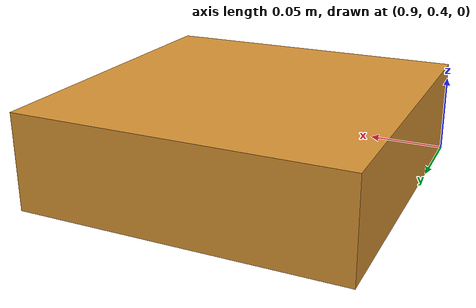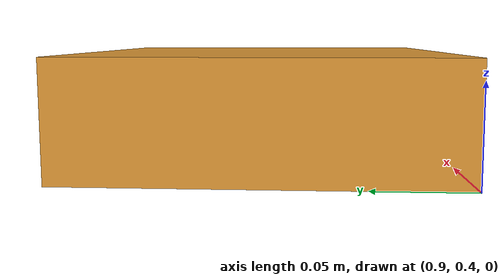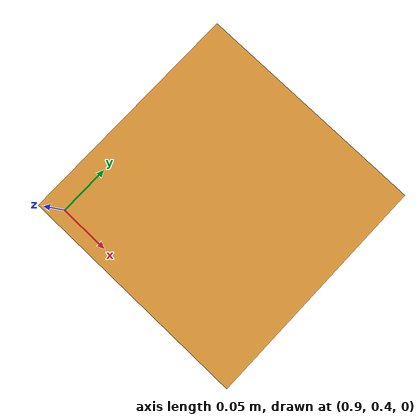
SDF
<?xml version="1.0"?>
<sdf version="1.7">
  <model name="payload">
    <pose>1.000000 0.500000 0.030000 0 0 0</pose>

    <!-- Main payload body -->
    <link name="payload_body">
      <inertial>
        <mass>0.5</mass>
        <inertia>
          <ixx>0.001817</ixx><iyy>0.001817</iyy><izz>0.003333</izz>
          <ixy>0</ixy><ixz>0</ixz><iyz>0</iyz>
        </inertia>
      </inertial>
      <collision name="col">
        <geometry><box><size>0.2 0.2 0.06</size></box></geometry>
      </collision>
      <visual name="vis">
        <geometry><box><size>0.2 0.2 0.06</size></box></geometry>
        <material>
          <ambient>0.70 0.45 0.15 1</ambient>
          <diffuse>0.85 0.58 0.20 1</diffuse>
          <specular>0.15 0.10 0.05 1</specular>
        </material>
      </visual>
    </link>

    <!-- 4 hook links (one attachment point per drone cable) -->

  </model>
</sdf>
